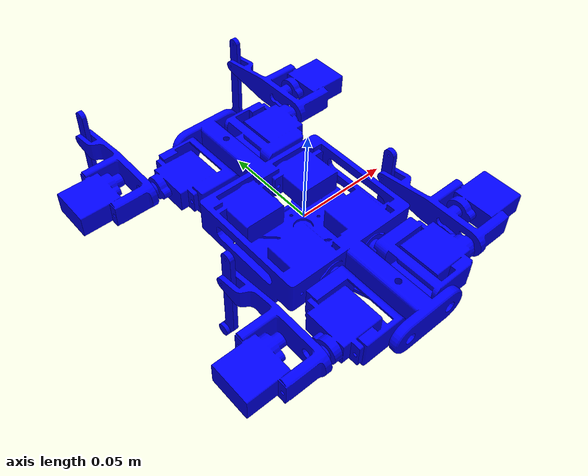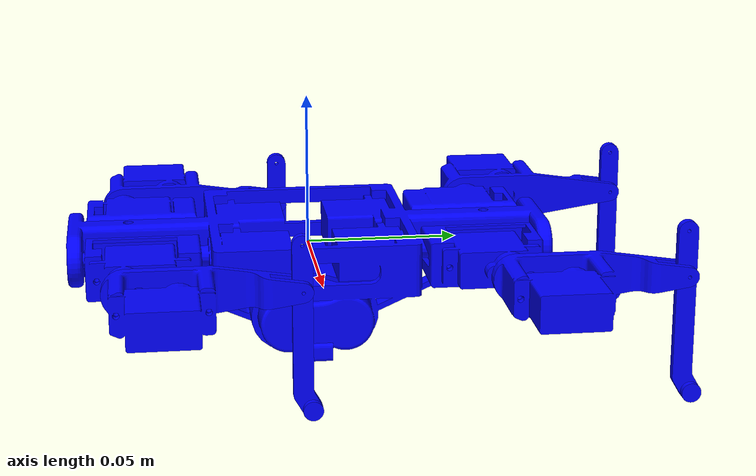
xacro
<?xml version="1.0" encoding="utf-8"?>
<robot xmlns:xacro="http://www.ros.org/wiki/xacro" name="quadruped_robot">

    <xacro:arg name="quadruped_id" default="quadruped_robot" /> <!-- Name of this robot -->
    <xacro:arg name="gazebo" default="false" /> <!-- Is the robot being simulated in gazebo? -->

    <xacro:property name="quadruped_id" value="$(arg quadruped_id)" />

    <xacro:unless value="$(arg gazebo)">
        <!-- Create a URDF for real hardware -->
        <xacro:include filename="quadruped_robot.xacro" />
        <xacro:quadruped_robot quadruped_id="${quadruped_id}" safety_distance="0.03" />

    </xacro:unless>

    <xacro:if value="$(arg gazebo)"> <!-- I don't think this is necessary if using moveit (RViz)-->
        <xacro:arg name="xyz" default="0 0 0" />
        <xacro:arg name="rpy" default="0 0 0" />

        <!-- Create Simulatable URDF -->

        <xacro:quadruped_robot quadruped_id="${quadruped_id}" />

        <!-- Gazebo require a joint to a link called "world" for statically mounted robots -->
        <link name="world" />
        <joint name="world_joint" type="fixed">
            <origin xyz="$(arg xyz)" rpy="$(arg rpy)" />
            <parent link="world" />
            <child link="qr_link0" />
        </joint>

        <gazebo>
            <plugin name="gazebo_ros_control" filename="libgazebo_ros_control.so">
                <robotNamespace>${quadruped_id}</robotNamespace>
                <controlPeriod>0.001</controlPeriod> <!-- refresh rate -->
                <robotSimType>gazebo_ros_control/DefaultRobotHWSim</robotSimType>
            </plugin>
            <self_collide>true</self_collide>
        </gazebo>
    </xacro:if>

</robot>

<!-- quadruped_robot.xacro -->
<robot xmlns:xacro="http://www.ros.org/wiki/xacro" name="quadruped_robot">
    <xacro:macro name="quadruped_robot" params="quadruped_id:='quadruped_robot' description_pkg:='' connected_to:='' xyz:='0 0 0' rpy:='0 0 0' safety_distance:=0">
        <xacro:unless value="${not connected_to}">
            <joint name="${connected_to}_joint" type="fixed">
                <parent link="${connected_to}"/>
                <child link="qr_link0"/>
                <origin rpy="{rpy}" xyz="${xyz}"/>
            </joint>
        </xacro:unless>

        <link
            name="qr_link0">
            <inertial>
            <origin
                xyz="0 0 -0.007924"
                rpy="0 0 0" />
            <mass
                value="0.11328" />
            <inertia
                ixx="0"
                ixy="0"
                ixz="0"
                iyy="0"
                iyz="0"
                izz="0" />
            </inertial>
            <visual>
            <origin
                xyz="0 0 0"
                rpy="0 0 0" />
            <geometry>
                <mesh
                filename="package://quadruped_robot/meshes/qr_link0.STL" />
            </geometry>
            <material
                name="">
                <color
                rgba="0 0 1 1" />
            </material>
            </visual>
            <collision>
            <origin
                xyz="0 0 0"
                rpy="0 0 0" />
            <geometry>
                <mesh
                filename="package://quadruped_robot/meshes/qr_link0.STL" />
            </geometry>
            </collision>
        </link>
        <link
            name="qr_fl_link1">
            <inertial>
            <origin
                xyz="0.014583 6.439E-05 -0.00032113"
                rpy="0 0 0" />
            <mass
                value="0.011527" />
            <inertia
                ixx="0"
                ixy="0"
                ixz="0"
                iyy="0"
                iyz="0"
                izz="0" />
            </inertial>
            <visual>
            <origin
                xyz="0 0 0"
                rpy="0 0 0" />
            <geometry>
                <mesh
                filename="package://quadruped_robot/meshes/qr_fl_link1.STL" />
            </geometry>
            <material
                name="">
                <color
                rgba="0 0 1 1" />
            </material>
            </visual>
            <collision>
            <origin
                xyz="0 0 0"
                rpy="0 0 0" />
            <geometry>
                <mesh
                filename="package://quadruped_robot/meshes/qr_fl_link1.STL" />
            </geometry>
            </collision>
        </link>
        <joint
            name="qr_fl_link1_joint"
            type="revolute">
            <safety_controller k_position="100.0" k_velocity="40.0" soft_lower_limit="-3.14" soft_upper_limit="3.14"/>
            <origin
            xyz="0.012475 -0.05545 0"
            rpy="0 0 0" />
            <parent
            link="qr_link0" />
            <child
            link="qr_fl_link1" />
            <axis
            xyz="0 1 0" />
            <limit
            lower="${-pi/2}"
            upper="${pi/2}"
            effort="80"
            velocity="5" />
        </joint>
        <link
            name="qr_fl_link2">
            <inertial>
            <origin
                xyz="0.01555 0.014907 4.1099E-09"
                rpy="0 0 0" />
            <mass
                value="0.012214" />
            <inertia
                ixx="0"
                ixy="0"
                ixz="0"
                iyy="0"
                iyz="0"
                izz="0" />
            </inertial>
            <visual>
            <origin
                xyz="0 0 0"
                rpy="0 0 0" />
            <geometry>
                <mesh
                filename="package://quadruped_robot/meshes/qr_fl_link2.STL" />
            </geometry>
            <material
                name="">
                <color
                rgba="0 0 1 1" />
            </material>
            </visual>
            <collision>
            <origin
                xyz="0 0 0"
                rpy="0 0 0" />
            <geometry>
                <mesh
                filename="package://quadruped_robot/meshes/qr_fl_link2.STL" />
            </geometry>
            </collision>
        </link>
        <joint
            name="qr_fl_link2_joint"
            type="revolute">
            <safety_controller k_position="100.0" k_velocity="40.0" soft_lower_limit="-3.14" soft_upper_limit="3.14"/>
            <origin
            xyz="0.03645 -0.00615 0"
            rpy="0 0 0" />
            <parent
            link="qr_fl_link1" />
            <child
            link="qr_fl_link2" />
            <axis
            xyz="1 0 0" />
            <limit
            lower="${-pi/2}"
            upper="${pi/2}"
            effort="80"
            velocity="5" />
        </joint>
        <link
            name="qr_fl_link3">
            <inertial>
            <origin
                xyz="-0.000325 0.0002616 -0.013208"
                rpy="0 0 0" />
            <mass
                value="0.0010736" />
            <inertia
                ixx="0"
                ixy="0"
                ixz="0"
                iyy="0"
                iyz="0"
                izz="0" />
            </inertial>
            <visual>
            <origin
                xyz="0 0 0"
                rpy="0 0 0" />
            <geometry>
                <mesh
                filename="package://quadruped_robot/meshes/qr_fl_link3.STL" />
            </geometry>
            <material
                name="">
                <color
                rgba="0 0 1 1" />
            </material>
            </visual>
            <collision>
            <origin
                xyz="0 0 0"
                rpy="0 0 0" />
            <geometry>
                <mesh
                filename="package://quadruped_robot/meshes/qr_fl_link3.STL" />
            </geometry>
            </collision>
        </link>
        <joint
            name="qr_fl_link3_joint"
            type="revolute">
            <safety_controller k_position="100.0" k_velocity="40.0" soft_lower_limit="-3.14" soft_upper_limit="3.14"/>
            <origin
            xyz="0.002175 0.055 0"
            rpy="0 0 0" />
            <parent
            link="qr_fl_link2" />
            <child
            link="qr_fl_link3" />
            <axis
            xyz="1 0 0" />
            <limit
            lower="${-pi/2}"
            upper="${pi/2}"
            effort="80"
            velocity="5" />
        </joint>
        <link
            name="qr_fl_link4">
            <inertial>
            <origin
                xyz="0.00235 0 0"
                rpy="0 0 0" />
            <mass
                value="6.63661448070844E-05" />
            <inertia
                ixx="0"
                ixy="0"
                ixz="0"
                iyy="0"
                iyz="0"
                izz="0" />
            </inertial>
            <visual>
            <origin
                xyz="0 0 0"
                rpy="0 0 0" />
            <geometry>
                <mesh
                filename="package://quadruped_robot/meshes/qr_fl_link4.STL" />
            </geometry>
            <material
                name="">
                <color
                rgba="0 0 1 1" />
            </material>
            </visual>
            <collision>
            <origin
                xyz="0 0 0"
                rpy="0 0 0" />
            <geometry>
                <mesh
                filename="package://quadruped_robot/meshes/qr_fl_link4.STL" />
            </geometry>
            </collision>
        </link>
        <joint
            name="qr_fl_link4_joint"
            type="fixed">
            <origin
            xyz="-0.000325 0.0028868 -0.04"
            rpy="0 0 0" />
            <parent
            link="qr_fl_link3" />
            <child
            link="qr_fl_link4" />
            <axis
            xyz="0 0 0" />
        </joint>
        <link
            name="qr_fr_link1">
            <inertial>
            <origin
                xyz="-0.014583 6.439E-05 -0.00032117"
                rpy="0 0 0" />
            <mass
                value="0.011527" />
            <inertia
                ixx="0"
                ixy="0"
                ixz="0"
                iyy="0"
                iyz="0"
                izz="0" />
            </inertial>
            <visual>
            <origin
                xyz="0 0 0"
                rpy="0 0 0" />
            <geometry>
                <mesh
                filename="package://quadruped_robot/meshes/qr_fr_link1.STL" />
            </geometry>
            <material
                name="">
                <color
                rgba="0 0 1 1" />
            </material>
            </visual>
            <collision>
            <origin
                xyz="0 0 0"
                rpy="0 0 0" />
            <geometry>
                <mesh
                filename="package://quadruped_robot/meshes/qr_fr_link1.STL" />
            </geometry>
            </collision>
        </link>
        <joint
            name="qr_fr_link1_joint"
            type="revolute">
            <safety_controller k_position="100.0" k_velocity="40.0" soft_lower_limit="-3.14" soft_upper_limit="3.14"/>
            <origin
            xyz="-0.012475 -0.05545 0"
            rpy="0 0 0" />
            <parent
            link="qr_link0" />
            <child
            link="qr_fr_link1" />
            <axis
            xyz="0 1 0" />
            <limit
            lower="${-pi/2}"
            upper="${pi/2}"
            effort="80"
            velocity="5" />
        </joint>
        <link
            name="qr_fr_link2">
            <inertial>
            <origin
                xyz="-0.01555 0.014907 -4.1099E-09"
                rpy="0 0 0" />
            <mass
                value="0.012214" />
            <inertia
                ixx="0"
                ixy="0"
                ixz="0"
                iyy="0"
                iyz="0"
                izz="0" />
            </inertial>
            <visual>
            <origin
                xyz="0 0 0"
                rpy="0 0 0" />
            <geometry>
                <mesh
                filename="package://quadruped_robot/meshes/qr_fr_link2.STL" />
            </geometry>
            <material
                name="">
                <color
                rgba="0 0 1 1" />
            </material>
            </visual>
            <collision>
            <origin
                xyz="0 0 0"
                rpy="0 0 0" />
            <geometry>
                <mesh
                filename="package://quadruped_robot/meshes/qr_fr_link2.STL" />
            </geometry>
            </collision>
        </link>
        <joint
            name="qr_fr_link2_joint"
            type="revolute">
            <safety_controller k_position="100.0" k_velocity="40.0" soft_lower_limit="-3.14" soft_upper_limit="3.14"/>
            <origin
            xyz="-0.03645 -0.00615 0"
            rpy="0 0 0" />
            <parent
            link="qr_fr_link1" />
            <child
            link="qr_fr_link2" />
            <axis
            xyz="-1 0 0" />
            <limit
            lower="${-pi/2}"
            upper="${pi/2}"
            effort="80"
            velocity="5" />
        </joint>
        <link
            name="qr_fr_link3">
            <inertial>
            <origin
                xyz="0.000325 0.0002616 -0.013208"
                rpy="0 0 0" />
            <mass
                value="0.0010736" />
            <inertia
                ixx="0"
                ixy="0"
                ixz="0"
                iyy="0"
                iyz="0"
                izz="0" />
            </inertial>
            <visual>
            <origin
                xyz="0 0 0"
                rpy="0 0 0" />
            <geometry>
                <mesh
                filename="package://quadruped_robot/meshes/qr_fr_link3.STL" />
            </geometry>
            <material
                name="">
                <color
                rgba="0 0 1 1" />
            </material>
            </visual>
            <collision>
            <origin
                xyz="0 0 0"
                rpy="0 0 0" />
            <geometry>
                <mesh
                filename="package://quadruped_robot/meshes/qr_fr_link3.STL" />
            </geometry>
            </collision>
        </link>
        <joint
            name="qr_fr_link3_joint"
            type="revolute">
            <safety_controller k_position="100.0" k_velocity="40.0" soft_lower_limit="-3.14" soft_upper_limit="3.14"/>
            <origin
            xyz="-0.002175 0.055 0"
            rpy="0 0 0" />
            <parent
            link="qr_fr_link2" />
            <child
            link="qr_fr_link3" />
            <axis
            xyz="-1 0 0" />
            <limit
            lower="${-pi/2}"
            upper="${pi/2}"
            effort="80"
            velocity="5" />
        </joint>
        <link
            name="qr_fr_link4">
            <inertial>
            <origin
                xyz="-0.00235 0 0"
                rpy="0 0 0" />
            <mass
                value="6.63661448070845E-05" />
            <inertia
                ixx="0"
                ixy="0"
                ixz="0"
                iyy="0"
                iyz="0"
                izz="0" />
            </inertial>
            <visual>
            <origin
                xyz="0 0 0"
                rpy="0 0 0" />
            <geometry>
                <mesh
                filename="package://quadruped_robot/meshes/qr_fr_link4.STL" />
            </geometry>
            <material
                name="">
                <color
                rgba="0 0 1 1" />
            </material>
            </visual>
            <collision>
            <origin
                xyz="0 0 0"
                rpy="0 0 0" />
            <geometry>
                <mesh
                filename="package://quadruped_robot/meshes/qr_fr_link4.STL" />
            </geometry>
            </collision>
        </link>
        <joint
            name="qr_fr_link4_joint"
            type="fixed">
            <origin
            xyz="0.000325 0.0028868 -0.04"
            rpy="0 0 0" />
            <parent
            link="qr_fr_link3" />
            <child
            link="qr_fr_link4" />
            <axis
            xyz="0 0 0" />
        </joint>
        <link
            name="qr_bl_link1">
            <inertial>
            <origin
                xyz="0.014583 -6.439E-05 -0.00032117"
                rpy="0 0 0" />
            <mass
                value="0.011527" />
            <inertia
                ixx="0"
                ixy="0"
                ixz="0"
                iyy="0"
                iyz="0"
                izz="0" />
            </inertial>
            <visual>
            <origin
                xyz="0 0 0"
                rpy="0 0 0" />
            <geometry>
                <mesh
                filename="package://quadruped_robot/meshes/qr_bl_link1.STL" />
            </geometry>
            <material
                name="">
                <color
                rgba="0 0 1 1" />
            </material>
            </visual>
            <collision>
            <origin
                xyz="0 0 0"
                rpy="0 0 0" />
            <geometry>
                <mesh
                filename="package://quadruped_robot/meshes/qr_bl_link1.STL" />
            </geometry>
            </collision>
        </link>
        <joint
            name="qr_bl_link1_joint"
            type="revolute">
            <safety_controller k_position="100.0" k_velocity="40.0" soft_lower_limit="-3.14" soft_upper_limit="3.14"/>
            <origin
            xyz="0.012475 0.05545 0"
            rpy="0 0 0" />
            <parent
            link="qr_link0" />
            <child
            link="qr_bl_link1" />
            <axis
            xyz="0 -1 0" />
            <limit
            lower="${-pi/2}"
            upper="${pi/2}"
            effort="80"
            velocity="5" />
        </joint>
        <link
            name="qr_bl_link2">
            <inertial>
            <origin
                xyz="0.01555 0.014907 4.1099E-09"
                rpy="0 0 0" />
            <mass
                value="0.012214" />
            <inertia
                ixx="0"
                ixy="0"
                ixz="0"
                iyy="0"
                iyz="0"
                izz="0" />
            </inertial>
            <visual>
            <origin
                xyz="0 0 0"
                rpy="0 0 0" />
            <geometry>
                <mesh
                filename="package://quadruped_robot/meshes/qr_bl_link2.STL" />
            </geometry>
            <material
                name="">
                <color
                rgba="0 0 1 1" />
            </material>
            </visual>
            <collision>
            <origin
                xyz="0 0 0"
                rpy="0 0 0" />
            <geometry>
                <mesh
                filename="package://quadruped_robot/meshes/qr_bl_link2.STL" />
            </geometry>
            </collision>
        </link>
        <joint
            name="qr_bl_link2_joint"
            type="revolute">
            <safety_controller k_position="100.0" k_velocity="40.0" soft_lower_limit="-3.14" soft_upper_limit="3.14"/>
            <origin
            xyz="0.03645 0.00615 0"
            rpy="0 0 0" />
            <parent
            link="qr_bl_link1" />
            <child
            link="qr_bl_link2" />
            <axis
            xyz="1 0 0" />
            <limit
            lower="${-pi/2}"
            upper="${pi/2}"
            effort="80"
            velocity="5" />
        </joint>
        <link
            name="qr_bl_link3">
            <inertial>
            <origin
                xyz="-0.000325 0.0002616 -0.013208"
                rpy="0 0 0" />
            <mass
                value="0.0010736" />
            <inertia
                ixx="0"
                ixy="0"
                ixz="0"
                iyy="0"
                iyz="0"
                izz="0" />
            </inertial>
            <visual>
            <origin
                xyz="0 0 0"
                rpy="0 0 0" />
            <geometry>
                <mesh
                filename="package://quadruped_robot/meshes/qr_bl_link3.STL" />
            </geometry>
            <material
                name="">
                <color
                rgba="0 0 1 1" />
            </material>
            </visual>
            <collision>
            <origin
                xyz="0 0 0"
                rpy="0 0 0" />
            <geometry>
                <mesh
                filename="package://quadruped_robot/meshes/qr_bl_link3.STL" />
            </geometry>
            </collision>
        </link>
        <joint
            name="qr_bl_link3_joint"
            type="revolute">
            <safety_controller k_position="100.0" k_velocity="40.0" soft_lower_limit="-3.14" soft_upper_limit="3.14"/>
            <origin
            xyz="0.002175 0.055 0"
            rpy="0 0 0" />
            <parent
            link="qr_bl_link2" />
            <child
            link="qr_bl_link3" />
            <axis
            xyz="1 0 0" />
            <limit
            lower="${-pi/2}"
            upper="${pi/2}"
            effort="80"
            velocity="5" />
        </joint>
        <link
            name="qr_bl_link4">
            <inertial>
            <origin
                xyz="0.00235 0 0"
                rpy="0 0 0" />
            <mass
                value="6.6366E-05" />
            <inertia
                ixx="0"
                ixy="0"
                ixz="0"
                iyy="0"
                iyz="0"
                izz="0" />
            </inertial>
            <visual>
            <origin
                xyz="0 0 0"
                rpy="0 0 0" />
            <geometry>
                <mesh
                filename="package://quadruped_robot/meshes/qr_bl_link4.STL" />
            </geometry>
            <material
                name="">
                <color
                rgba="0 0 1 1" />
            </material>
            </visual>
            <collision>
            <origin
                xyz="0 0 0"
                rpy="0 0 0" />
            <geometry>
                <mesh
                filename="package://quadruped_robot/meshes/qr_bl_link4.STL" />
            </geometry>
            </collision>
        </link>
        <joint
            name="qr_bl_link4_joint"
            type="fixed">
            <origin
            xyz="-0.000325 0.0028868 -0.04"
            rpy="0 0 0" />
            <parent
            link="qr_bl_link3" />
            <child
            link="qr_bl_link4" />
            <axis
            xyz="0 0 0" />
        </joint>
        <link
            name="qr_br_link1">
            <inertial>
            <origin
                xyz="-0.014583 -6.439E-05 -0.00032117"
                rpy="0 0 0" />
            <mass
                value="0.011527" />
            <inertia
                ixx="0"
                ixy="0"
                ixz="0"
                iyy="0"
                iyz="0"
                izz="0" />
            </inertial>
            <visual>
            <origin
                xyz="0 0 0"
                rpy="0 0 0" />
            <geometry>
                <mesh
                filename="package://quadruped_robot/meshes/qr_br_link1.STL" />
            </geometry>
            <material
                name="">
                <color
                rgba="0 0 1 1" />
            </material>
            </visual>
            <collision>
            <origin
                xyz="0 0 0"
                rpy="0 0 0" />
            <geometry>
                <mesh
                filename="package://quadruped_robot/meshes/qr_br_link1.STL" />
            </geometry>
            </collision>
        </link>
        <joint
            name="qr_br_link1_joint"
            type="revolute">
            <safety_controller k_position="100.0" k_velocity="40.0" soft_lower_limit="-3.14" soft_upper_limit="3.14"/>
            <origin
            xyz="-0.012475 0.05545 0"
            rpy="0 0 0" />
            <parent
            link="qr_link0" />
            <child
            link="qr_br_link1" />
            <axis
            xyz="0 -1 0" />
            <limit
            lower="${-pi/2}"
            upper="${pi/2}"
            effort="80"
            velocity="5" />
        </joint>
        <link
            name="qr_br_link2">
            <inertial>
            <origin
                xyz="-0.01555 0.014907 -4.1099E-09"
                rpy="0 0 0" />
            <mass
                value="0.012214" />
            <inertia
                ixx="0"
                ixy="0"
                ixz="0"
                iyy="0"
                iyz="0"
                izz="0" />
            </inertial>
            <visual>
            <origin
                xyz="0 0 0"
                rpy="0 0 0" />
            <geometry>
                <mesh
                filename="package://quadruped_robot/meshes/qr_br_link2.STL" />
            </geometry>
            <material
                name="">
                <color
                rgba="0 0 1 1" />
            </material>
            </visual>
            <collision>
            <origin
                xyz="0 0 0"
                rpy="0 0 0" />
            <geometry>
                <mesh
                filename="package://quadruped_robot/meshes/qr_br_link2.STL" />
            </geometry>
            </collision>
        </link>
        <joint
            name="qr_br_link2_joint"
            type="revolute">
            <safety_controller k_position="100.0" k_velocity="40.0" soft_lower_limit="-3.14" soft_upper_limit="3.14"/>
            <origin
            xyz="-0.03645 0.00615 0"
            rpy="0 0 0" />
            <parent
            link="qr_br_link1" />
            <child
            link="qr_br_link2" />
            <axis
            xyz="-1 0 0" />
            <limit
            lower="${-pi/2}"
            upper="${pi/2}"
            effort="80"
            velocity="5" />
        </joint>
        <link
            name="qr_br_link3">
            <inertial>
            <origin
                xyz="0.000325 0.0002616 -0.013208"
                rpy="0 0 0" />
            <mass
                value="0.0010736" />
            <inertia
                ixx="0"
                ixy="0"
                ixz="0"
                iyy="0"
                iyz="0"
                izz="0" />
            </inertial>
            <visual>
            <origin
                xyz="0 0 0"
                rpy="0 0 0" />
            <geometry>
                <mesh
                filename="package://quadruped_robot/meshes/qr_br_link3.STL" />
            </geometry>
            <material
                name="">
                <color
                rgba="0 0 1 1" />
            </material>
            </visual>
            <collision>
            <origin
                xyz="0 0 0"
                rpy="0 0 0" />
            <geometry>
                <mesh
                filename="package://quadruped_robot/meshes/qr_br_link3.STL" />
            </geometry>
            </collision>
        </link>
        <joint
            name="qr_br_link3_joint"
            type="revolute">
            <safety_controller k_position="100.0" k_velocity="40.0" soft_lower_limit="-3.14" soft_upper_limit="3.14"/>
            <origin
            xyz="-0.002175 0.055 0"
            rpy="0 0 0" />
            <parent
            link="qr_br_link2" />
            <child
            link="qr_br_link3" />
            <axis
            xyz="-1 0 0" />
            <limit
            lower="${-pi/2}"
            upper="${pi/2}"
            effort="80"
            velocity="5" />
        </joint>
        <link
            name="qr_br_link4">
            <inertial>
            <origin
                xyz="-0.00235 0 0"
                rpy="0 0 0" />
            <mass
                value="6.6366E-05" />
            <inertia
                ixx="0"
                ixy="0"
                ixz="0"
                iyy="0"
                iyz="0"
                izz="0" />
            </inertial>
            <visual>
            <origin
                xyz="0 0 0"
                rpy="0 0 0" />
            <geometry>
                <mesh
                filename="package://quadruped_robot/meshes/qr_br_link4.STL" />
            </geometry>
            <material
                name="">
                <color
                rgba="0 0 1 1" />
            </material>
            </visual>
            <collision>
            <origin
                xyz="0 0 0"
                rpy="0 0 0" />
            <geometry>
                <mesh
                filename="package://quadruped_robot/meshes/qr_br_link4.STL" />
            </geometry>
            </collision>
        </link>
        <joint
            name="qr_br_link4_joint"
            type="fixed">
            <origin
            xyz="0.000325 0.0028868 -0.04"
            rpy="0 0 0" />
            <parent
            link="qr_br_link3" />
            <child
            link="qr_br_link4" />
            <axis
            xyz="0 0 0" />
        </joint>
    </xacro:macro>
</robot>
